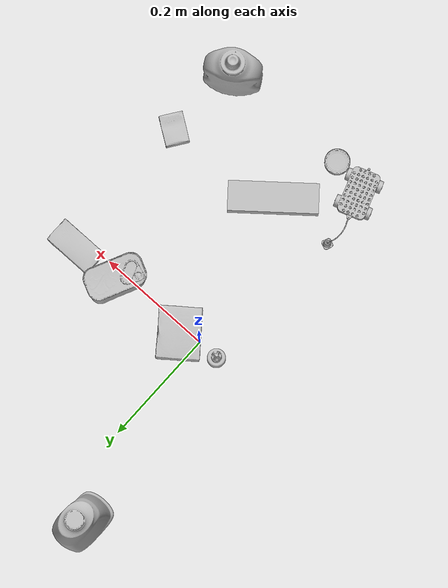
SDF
<sdf version="1.4">
  <world name="default">
    <light name="light1" type="point">
      <pose>0 0 1 0 0 0</pose>
      <diffuse>3 3 3 1</diffuse>
      <specular>3 3 3 1</specular>
    </light>
    <light name="light2" type="point">
      <pose>0 0.5 2 0 0 0</pose>
      <diffuse>1 1 1 1</diffuse>
      <specular>1 1 1 1</specular>
    </light>
    <light name="light3" type="point">
      <pose>0 0.5 2 0 0 0</pose>
      <diffuse>3 3 3 1</diffuse>
      <specular>3 3 3 1</specular>
    </light>
    <scene>
      <ambient>0.7 0.7 0.7</ambient>
    </scene>
    <model name="bottle1">
      <link name="link_bottle1">
        <collision name="default">
          <geometry>
            <mesh>
              <uri>model://bleach_cleanser/collision_meshes/collision.obj</uri>
              <scale>1.0 1.0 1.0</scale>
            </mesh>
          </geometry>
          <surface>
            <friction>
              <ode>
                <mu>0.5</mu>
                <mu2>0.5</mu2>
              </ode>
            </friction>
          <contact>
        <ode>
            <max_vel>0</max_vel>
            <min_depth>0.0001</min_depth>
            <kp>1e8</kp>
        </ode>
    </contact></surface>
        </collision>
        <visual name="default">
          <geometry>
            <mesh>
              <uri>model://bleach_cleanser/visual_meshes/visual.dae</uri>
              <scale>1.0 1.0 1.0</scale>
            </mesh>
          </geometry>
        </visual>
        <inertial>
          <mass>0.8435376882553101</mass>
          <pose>0.00012193185102660209 0.0037838835269212723 -0.02442161925137043 -0.0738167136291003 0.00042011570398771517 -0.0068750683244174</pose>
          <inertia>
            <ixx>0.0041056215</ixx>
            <iyy>0.0038258375</iyy>
            <izz>0.0007019545</izz>
            <ixy>0</ixy>
            <ixz>0</ixz>
            <iyz>0</iyz>
          </inertia>
        </inertial>
      </link>
      <pose>-0.0572110116481781 0.3470116853713989 0.12578417360782623 -0.00019977214273678777 1.682031820472505e-05 0.026333513915513175</pose>
    </model>
    <model name="bottle2">
      <link name="link_bottle2">
        <collision name="default">
          <geometry>
            <mesh>
              <uri>model://mustard_bottle/collision_meshes/collision.obj</uri>
              <scale>1.0 1.0 1.0</scale>
            </mesh>
          </geometry>
          <surface>
            <friction>
              <ode>
                <mu>0.5</mu>
                <mu2>0.5</mu2>
              </ode>
            </friction>
          <contact>
        <ode>
            <max_vel>0</max_vel>
            <min_depth>0.0001</min_depth>
            <kp>1e8</kp>
        </ode>
    </contact></surface>
        </collision>
        <visual name="default">
          <geometry>
            <mesh>
              <uri>model://mustard_bottle/visual_meshes/visual.dae</uri>
              <scale>1.0 1.0 1.0</scale>
            </mesh>
          </geometry>
        </visual>
        <inertial>
          <mass>0.5862947106361389</mass>
          <pose>0.0005032453336752951 -0.00015647400869056582 -0.01747579500079155 0.0004182326333961274 0.0009465780125852031 0.02485369627950655</pose>
          <inertia>
            <ixx>0.0016280604</ixx>
            <iyy>0.001428485</iyy>
            <izz>0.00042907606</izz>
            <ixy>0</ixy>
            <ixz>0</ixz>
            <iyz>0</iyz>
          </inertia>
        </inertial>
      </link>
      <pose>0.25244563817977905 -0.361895352602005 0.09615199267864227 1.485165914604495e-05 1.626951550253836e-05 2.1037589674546586</pose>
    </model>
    <model name="toy1">
      <link name="link_toy1">
        <collision name="default">
          <geometry>
            <mesh>
              <uri>model://d_toy_airplane/collision_meshes/collision.obj</uri>
              <scale>1.0 1.0 1.0</scale>
            </mesh>
          </geometry>
          <surface>
            <friction>
              <ode>
                <mu>0.5</mu>
                <mu2>0.5</mu2>
              </ode>
            </friction>
          <contact>
        <ode>
            <max_vel>0</max_vel>
            <min_depth>0.0001</min_depth>
            <kp>1e8</kp>
        </ode>
    </contact></surface>
        </collision>
        <visual name="default">
          <geometry>
            <mesh>
              <uri>model://d_toy_airplane/visual_meshes/visual.dae</uri>
              <scale>1.0 1.0 1.0</scale>
            </mesh>
          </geometry>
        </visual>
        <inertial>
          <mass>0.016342557966709137</mass>
          <pose>9.410292841494083e-05 -5.809347931062803e-05 -0.011728093959391117 0.0002665850352305412 0.004678995185611379 0.5193821656772198</pose>
          <inertia>
            <ixx>4.8991824e-06</ixx>
            <iyy>4.9028777e-06</iyy>
            <izz>1.4790946e-06</izz>
            <ixy>0</ixy>
            <ixz>0</ixz>
            <iyz>0</iyz>
          </inertia>
        </inertial>
      </link>
      <pose>-0.03797237575054169 0.0014093457721173763 0.033339060842990875 0.0001660850240301078 7.170175129821167e-07 -2.1837666803250655</pose>
    </model>
    <model name="toy2">
      <link name="link_toy2">
        <collision name="default">
          <geometry>
            <mesh>
              <uri>model://g_lego_duplo/collision_meshes/collision.obj</uri>
              <scale>0.5 0.5 0.5</scale>
            </mesh>
          </geometry>
          <surface>
            <friction>
              <ode>
                <mu>0.5</mu>
                <mu2>0.5</mu2>
              </ode>
            </friction>
          <contact>
        <ode>
            <max_vel>0</max_vel>
            <min_depth>0.0001</min_depth>
            <kp>1e8</kp>
        </ode>
    </contact></surface>
        </collision>
        <visual name="default">
          <geometry>
            <mesh>
              <uri>model://g_lego_duplo/visual_meshes/visual.dae</uri>
              <scale>0.5 0.5 0.5</scale>
            </mesh>
          </geometry>
        </visual>
        <inertial>
          <mass>0.06075087562203407</mass>
          <pose>-0.02502383105456829 0.0008777320035733283 0.0019403373589739203 0.010962969944672394 0.038108282316868566 -0.09653022106038826</pose>
          <inertia>
            <ixx>2.2007183e-05</ixx>
            <iyy>6.65348e-05</iyy>
            <izz>8.323752e-05</izz>
            <ixy>0</ixy>
            <ixz>0</ixz>
            <iyz>0</iyz>
          </inertia>
        </inertial>
      </link>
      <pose>-0.038494184613227844 -0.32727476954460144 0.014913992956280708 0.0002737539027043403 -0.002343753972210557 1.9004622539238638</pose>
    </model>
    <model name="can1">
      <link name="link_can1">
        <collision name="default">
          <geometry>
            <mesh>
              <uri>model://potted_meat_can/collision_meshes/collision.obj</uri>
              <scale>1.0 1.0 1.0</scale>
            </mesh>
          </geometry>
          <surface>
            <friction>
              <ode>
                <mu>0.5</mu>
                <mu2>0.5</mu2>
              </ode>
            </friction>
          <contact>
        <ode>
            <max_vel>0</max_vel>
            <min_depth>0.0001</min_depth>
            <kp>1e8</kp>
        </ode>
    </contact></surface>
        </collision>
        <visual name="default">
          <geometry>
            <mesh>
              <uri>model://potted_meat_can/visual_meshes/visual.dae</uri>
              <scale>1.0 1.0 1.0</scale>
            </mesh>
          </geometry>
        </visual>
        <inertial>
          <mass>0.20078136026859283</mass>
          <pose>0.00022888144303578883 -5.9891190176131204e-05 -0.0006367445457726717 -0.02809335636395505 -0.007232596981483405 0.015406261474000347</pose>
          <inertia>
            <ixx>0.0002582842</ixx>
            <iyy>0.00015692727</iyy>
            <izz>0.0001878526</izz>
            <ixy>0</ixy>
            <ixz>0</ixz>
            <iyz>0</iyz>
          </inertia>
        </inertial>
      </link>
      <pose>0.1692785769701004 0.01751575991511345 0.04212801158428192 7.900383435434054e-08 -5.984806877968632e-07 -0.45602963912873873</pose>
    </model>
    <model name="can2">
      <link name="link_can2">
        <collision name="default">
          <geometry>
            <mesh>
              <uri>model://tuna_fish_can/collision_meshes/collision.obj</uri>
              <scale>0.5 0.5 0.5</scale>
            </mesh>
          </geometry>
          <surface>
            <friction>
              <ode>
                <mu>0.5</mu>
                <mu2>0.5</mu2>
              </ode>
            </friction>
          <contact>
        <ode>
            <max_vel>0</max_vel>
            <min_depth>0.0001</min_depth>
            <kp>1e8</kp>
        </ode>
    </contact></surface>
        </collision>
        <visual name="default">
          <geometry>
            <mesh>
              <uri>model://tuna_fish_can/visual_meshes/visual.dae</uri>
              <scale>0.5 0.5 0.5</scale>
            </mesh>
          </geometry>
        </visual>
        <inertial>
          <mass>0.014736190438270569</mass>
          <pose>-2.036184559983667e-05 -7.256420758494642e-06 -0.0005269023822620511 -0.0017944748482382063 0.00017166274907885265 0.24056368509195397</pose>
          <inertia>
            <ixx>1.992355e-06</ixx>
            <iyy>1.9840513e-06</iyy>
            <izz>3.409204e-06</izz>
            <ixy>0</ixy>
            <ixz>0</ixz>
            <iyz>0</iyz>
          </inertia>
        </inertial>
      </link>
      <pose>0.03086065500974655 -0.37238895893096924 0.008520047180354595 1.274748991296313e-06 -5.615809487219877e-06 2.3655793268530245</pose>
    </model>
    <model name="box1">
      <link name="link_box1">
        <collision name="default">
          <geometry>
            <mesh>
              <uri>model://sugar_box/collision_meshes/collision.obj</uri>
              <scale>0.5 0.5 0.5</scale>
            </mesh>
          </geometry>
          <surface>
            <friction>
              <ode>
                <mu>0.5</mu>
                <mu2>0.5</mu2>
              </ode>
            </friction>
          <contact>
        <ode>
            <max_vel>0</max_vel>
            <min_depth>0.0001</min_depth>
            <kp>1e8</kp>
        </ode>
    </contact></surface>
        </collision>
        <visual name="default">
          <geometry>
            <mesh>
              <uri>model://sugar_box/visual_meshes/visual.dae</uri>
              <scale>0.5 0.5 0.5</scale>
            </mesh>
          </geometry>
        </visual>
        <inertial>
          <mass>0.12222740799188614</mass>
          <pose>0.0005171863595023751 1.9245549992774613e-05 -0.00018182404164690524 -0.000404625834306888 0.0010506637544316808 0.0026153790219515644</pose>
          <inertia>
            <ixx>2.5459884e-05</ixx>
            <iyy>8.229157e-05</iyy>
            <izz>9.851283e-05</izz>
            <ixy>0</ixy>
            <ixz>0</ixz>
            <iyz>0</iyz>
          </inertia>
        </inertial>
      </link>
      <pose>0.25619807839393616 0.019079210236668587 0.011399304494261742 0.0007745588883702 -0.023433027406434506 3.1414825482229083</pose>
    </model>
    <model name="box2">
      <link name="link_box2">
        <collision name="default">
          <geometry>
            <mesh>
              <uri>model://jenga/collision_meshes/collision.obj</uri>
              <scale>1.0 1.0 1.0</scale>
            </mesh>
          </geometry>
          <surface>
            <friction>
              <ode>
                <mu>0.5</mu>
                <mu2>0.5</mu2>
              </ode>
            </friction>
          <contact>
        <ode>
            <max_vel>0</max_vel>
            <min_depth>0.0001</min_depth>
            <kp>1e8</kp>
        </ode>
    </contact></surface>
        </collision>
        <visual name="default">
          <geometry>
            <mesh>
              <uri>model://jenga/visual_meshes/visual.dae</uri>
              <scale>1.0 1.0 1.0</scale>
            </mesh>
          </geometry>
        </visual>
        <inertial>
          <mass>0.17645145952701569</mass>
          <pose>-2.502855807051674e-07 -0.00010250011109746993 -4.0923405322246253e-05 0.0 -7.342155186052628e-07 0.0</pose>
          <inertia>
            <ixx>4.8828406e-05</ixx>
            <iyy>0.00033085994</iyy>
            <izz>0.00035322108</izz>
            <ixy>0</ixy>
            <ixz>0</ixz>
            <iyz>0</iyz>
          </inertia>
        </inertial>
      </link>
      <pose>0.068978451192379 -0.256888747215271 0.015000001527369022 1.6655211613449673e-08 -9.608882324153131e-11 0.6939436314588268</pose>
    </model>
    <model name="box3">
      <link name="link_box3">
        <collision name="default">
          <geometry>
            <mesh>
              <uri>model://gelatin_box/collision_meshes/collision.obj</uri>
              <scale>1.0 1.0 1.0</scale>
            </mesh>
          </geometry>
          <surface>
            <friction>
              <ode>
                <mu>0.5</mu>
                <mu2>0.5</mu2>
              </ode>
            </friction>
          <contact>
        <ode>
            <max_vel>0</max_vel>
            <min_depth>0.0001</min_depth>
            <kp>1e8</kp>
        </ode>
    </contact></surface>
        </collision>
        <visual name="default">
          <geometry>
            <mesh>
              <uri>model://gelatin_box/visual_meshes/visual.dae</uri>
              <scale>1.0 1.0 1.0</scale>
            </mesh>
          </geometry>
        </visual>
        <inertial>
          <mass>0.13059620559215546</mass>
          <pose>0.0004319618456065655 0.00011156871914863586 -0.0003640321083366871 -0.0010503721928909568 -0.00475581775899517 0.01644055574591333</pose>
          <inertia>
            <ixx>9.219027e-05</ixx>
            <iyy>6.585102e-05</iyy>
            <izz>0.00014033413</izz>
            <ixy>0</ixy>
            <ixz>0</ixz>
            <iyz>0</iyz>
          </inertia>
        </inertial>
      </link>
      <pose>0.034152910113334656 0.012001601979136467 0.015168314799666405 0.005597427403065415 -0.0073045341230175915 0.6554748391273943</pose>
    </model>
    <model name="box4">
      <link name="link_box4">
        <collision name="default">
          <geometry>
            <mesh>
              <uri>model://cracker_box/collision_meshes/collision.obj</uri>
              <scale>0.25 0.25 0.25</scale>
            </mesh>
          </geometry>
          <surface>
            <friction>
              <ode>
                <mu>0.5</mu>
                <mu2>0.5</mu2>
              </ode>
            </friction>
          <contact>
        <ode>
            <max_vel>0</max_vel>
            <min_depth>0.0001</min_depth>
            <kp>1e8</kp>
        </ode>
    </contact></surface>
        </collision>
        <visual name="default">
          <geometry>
            <mesh>
              <uri>model://cracker_box/visual_meshes/visual.dae</uri>
              <scale>0.25 0.25 0.25</scale>
            </mesh>
          </geometry>
        </visual>
        <inertial>
          <mass>0.04771818593144417</mass>
          <pose>0.0002366032567806542 6.358561950037256e-05 -0.00042573839891701937 -0.00031620769108308636 -0.011106489600173282 0.0025467959336867136</pose>
          <inertia>
            <ixx>7.5858593e-06</ixx>
            <iyy>1.2525745e-05</iyy>
            <izz>1.7875387e-05</izz>
            <ixy>0</ixy>
            <ixz>0</ixz>
            <iyz>0</iyz>
          </inertia>
        </inertial>
      </link>
      <pose>0.2666510343551636 -0.23320534825325012 0.009096027351915836 -0.014050247582999987 -0.005016818296974177 2.535988076704866</pose>
    </model>
  <physics type="ode">
      <max_contacts>50</max_contacts>
      <ode>
        <solver>
          <type>quick</type>
          <iters>75</iters>
        </solver>
        <constraints>
          <contact_max_correcting_vel>0</contact_max_correcting_vel>
          <contact_surface_layer>0</contact_surface_layer>
        </constraints>
      </ode>
    </physics></world>
</sdf>
